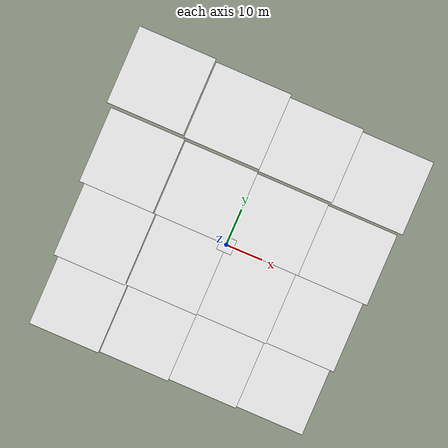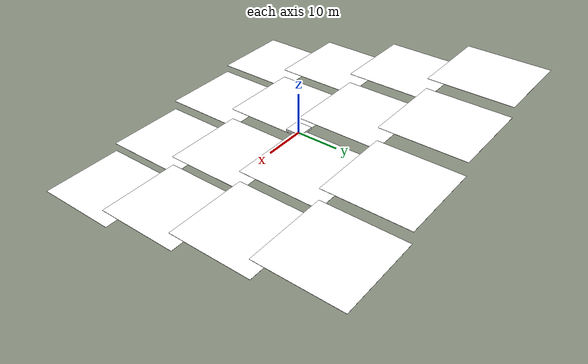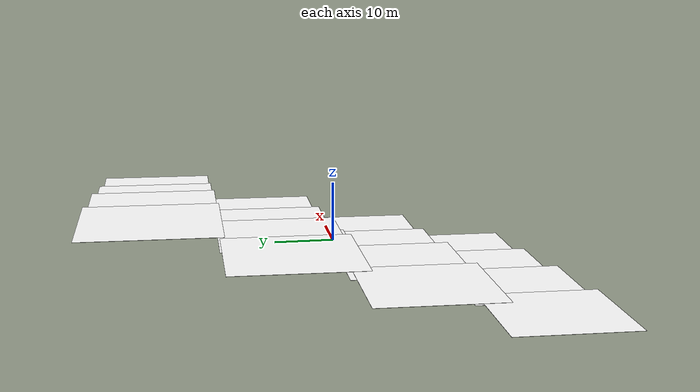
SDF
<sdf version="1.9">
 <world name="serefli_koschisar_flowtex">
  <plugin filename="gz-sim-physics-system" name="gz::sim::systems::Physics"/>
  <plugin filename="gz-sim-user-commands-system" name="gz::sim::systems::UserCommands"/>
  <plugin filename="gz-sim-scene-broadcaster-system" name="gz::sim::systems::SceneBroadcaster"/>
  <plugin filename="gz-sim-sensors-system" name="gz::sim::systems::Sensors">
   <render_engine>ogre</render_engine>
  </plugin>
  <plugin filename="gz-sim-imu-system" name="gz::sim::systems::Imu"/>
  <plugin filename="gz-sim-navsat-system" name="gz::sim::systems::NavSat"/>
  <plugin filename="gz-sim-air-pressure-system" name="gz::sim::systems::AirPressure"/>
  <plugin filename="gz-sim-magnetometer-system" name="gz::sim::systems::Magnetometer"/>
  <plugin filename="gz-sim-contact-system" name="gz::sim::systems::Contact"/>
  <plugin filename="gz-sim-apply-link-wrench-system" name="gz::sim::systems::ApplyLinkWrench"/>
  <light type="directional" name="sun">
   <pose>0 -7000 7000 0 0 0</pose>
   <diffuse>0.9 0.88 0.82 1</diffuse>
   <specular>0 0 0 1</specular>
   <direction>0.0 0.6 -0.6</direction>
  </light>
  <scene>
   <ambient>0.45 0.48 0.55 1</ambient>
   <grid>false</grid>
   <origin_visual>false</origin_visual>
   <sky><time>10</time><sunrise>6</sunrise><sunset>20</sunset><clouds><speed>12</speed></clouds></sky>
  </scene>
  <physics name="1ms" type="ignored"><dart><collision_detector>bullet</collision_detector></dart></physics>
  <gravity>0 0 -9.8066</gravity>
  <spherical_coordinates>
   <surface_model>EARTH_WGS84</surface_model>
   <latitude_deg>38.9667425790774</latitude_deg>
   <longitude_deg>33.564598215693906</longitude_deg>
   <elevation>1079.4000000000015</elevation>
  </spherical_coordinates>
  <model name="databoss_launch_pad">
   <static>true</static>
   <pose>0 0 1.05 0 0 0</pose>
   <link name="pad">
    <collision name="c"><geometry><box><size>4 4 0.5</size></box></geometry></collision>
    <visual name="v">
     <geometry><box><size>4 4 0.5</size></box></geometry>
     <material>
      <ambient>1 1 1 1</ambient>
      <diffuse>1 1 1 1</diffuse>
      <specular>0 0 0 1</specular>
      <pbr>
       <metal>
        <albedo_map>mesh/flow_detail.png</albedo_map>
        <roughness>1.0</roughness>
        <metalness>0.0</metalness>
       </metal>
      </pbr>
     </material>
    </visual>
   </link>
  </model>
  <model name="databoss_flow_detail_overlay">
   <static>true</static>
   <link name="visual_tiles">
    <visual name="flow_tile_000_000">
     <pose>-30.000000 -30.000000 -4.263682 0 0 0</pose>
     <geometry><box><size>20.000000 20.000000 0.030000</size></box></geometry>
     <material>
      <ambient>1 1 1 1</ambient>
      <diffuse>1 1 1 1</diffuse>
      <specular>0 0 0 1</specular>
      <pbr>
       <metal>
        <albedo_map>mesh/flow_detail.png</albedo_map>
        <roughness>1.0</roughness>
        <metalness>0.0</metalness>
       </metal>
      </pbr>
     </material>
    </visual>
    <visual name="flow_tile_000_001">
     <pose>-30.000000 -10.000000 0.908168 0 0 0</pose>
     <geometry><box><size>20.000000 20.000000 0.030000</size></box></geometry>
     <material>
      <ambient>1 1 1 1</ambient>
      <diffuse>1 1 1 1</diffuse>
      <specular>0 0 0 1</specular>
      <pbr>
       <metal>
        <albedo_map>mesh/flow_detail.png</albedo_map>
        <roughness>1.0</roughness>
        <metalness>0.0</metalness>
       </metal>
      </pbr>
     </material>
    </visual>
    <visual name="flow_tile_000_002">
     <pose>-30.000000 10.000000 6.304881 0 0 0</pose>
     <geometry><box><size>20.000000 20.000000 0.030000</size></box></geometry>
     <material>
      <ambient>1 1 1 1</ambient>
      <diffuse>1 1 1 1</diffuse>
      <specular>0 0 0 1</specular>
      <pbr>
       <metal>
        <albedo_map>mesh/flow_detail.png</albedo_map>
        <roughness>1.0</roughness>
        <metalness>0.0</metalness>
       </metal>
      </pbr>
     </material>
    </visual>
    <visual name="flow_tile_000_003">
     <pose>-30.000000 30.000000 11.778521 0 0 0</pose>
     <geometry><box><size>20.000000 20.000000 0.030000</size></box></geometry>
     <material>
      <ambient>1 1 1 1</ambient>
      <diffuse>1 1 1 1</diffuse>
      <specular>0 0 0 1</specular>
      <pbr>
       <metal>
        <albedo_map>mesh/flow_detail.png</albedo_map>
        <roughness>1.0</roughness>
        <metalness>0.0</metalness>
       </metal>
      </pbr>
     </material>
    </visual>
    <visual name="flow_tile_001_000">
     <pose>-10.000000 -30.000000 -6.143740 0 0 0</pose>
     <geometry><box><size>20.000000 20.000000 0.030000</size></box></geometry>
     <material>
      <ambient>1 1 1 1</ambient>
      <diffuse>1 1 1 1</diffuse>
      <specular>0 0 0 1</specular>
      <pbr>
       <metal>
        <albedo_map>mesh/flow_detail.png</albedo_map>
        <roughness>1.0</roughness>
        <metalness>0.0</metalness>
       </metal>
      </pbr>
     </material>
    </visual>
    <visual name="flow_tile_001_001">
     <pose>-10.000000 -10.000000 -1.129971 0 0 0</pose>
     <geometry><box><size>20.000000 20.000000 0.030000</size></box></geometry>
     <material>
      <ambient>1 1 1 1</ambient>
      <diffuse>1 1 1 1</diffuse>
      <specular>0 0 0 1</specular>
      <pbr>
       <metal>
        <albedo_map>mesh/flow_detail.png</albedo_map>
        <roughness>1.0</roughness>
        <metalness>0.0</metalness>
       </metal>
      </pbr>
     </material>
    </visual>
    <visual name="flow_tile_001_002">
     <pose>-10.000000 10.000000 4.004684 0 0 0</pose>
     <geometry><box><size>20.000000 20.000000 0.030000</size></box></geometry>
     <material>
      <ambient>1 1 1 1</ambient>
      <diffuse>1 1 1 1</diffuse>
      <specular>0 0 0 1</specular>
      <pbr>
       <metal>
        <albedo_map>mesh/flow_detail.png</albedo_map>
        <roughness>1.0</roughness>
        <metalness>0.0</metalness>
       </metal>
      </pbr>
     </material>
    </visual>
    <visual name="flow_tile_001_003">
     <pose>-10.000000 30.000000 9.322780 0 0 0</pose>
     <geometry><box><size>20.000000 20.000000 0.030000</size></box></geometry>
     <material>
      <ambient>1 1 1 1</ambient>
      <diffuse>1 1 1 1</diffuse>
      <specular>0 0 0 1</specular>
      <pbr>
       <metal>
        <albedo_map>mesh/flow_detail.png</albedo_map>
        <roughness>1.0</roughness>
        <metalness>0.0</metalness>
       </metal>
      </pbr>
     </material>
    </visual>
    <visual name="flow_tile_002_000">
     <pose>10.000000 -30.000000 -8.492122 0 0 0</pose>
     <geometry><box><size>20.000000 20.000000 0.030000</size></box></geometry>
     <material>
      <ambient>1 1 1 1</ambient>
      <diffuse>1 1 1 1</diffuse>
      <specular>0 0 0 1</specular>
      <pbr>
       <metal>
        <albedo_map>mesh/flow_detail.png</albedo_map>
        <roughness>1.0</roughness>
        <metalness>0.0</metalness>
       </metal>
      </pbr>
     </material>
    </visual>
    <visual name="flow_tile_002_001">
     <pose>10.000000 -10.000000 -3.808039 0 0 0</pose>
     <geometry><box><size>20.000000 20.000000 0.030000</size></box></geometry>
     <material>
      <ambient>1 1 1 1</ambient>
      <diffuse>1 1 1 1</diffuse>
      <specular>0 0 0 1</specular>
      <pbr>
       <metal>
        <albedo_map>mesh/flow_detail.png</albedo_map>
        <roughness>1.0</roughness>
        <metalness>0.0</metalness>
       </metal>
      </pbr>
     </material>
    </visual>
    <visual name="flow_tile_002_002">
     <pose>10.000000 10.000000 1.118660 0 0 0</pose>
     <geometry><box><size>20.000000 20.000000 0.030000</size></box></geometry>
     <material>
      <ambient>1 1 1 1</ambient>
      <diffuse>1 1 1 1</diffuse>
      <specular>0 0 0 1</specular>
      <pbr>
       <metal>
        <albedo_map>mesh/flow_detail.png</albedo_map>
        <roughness>1.0</roughness>
        <metalness>0.0</metalness>
       </metal>
      </pbr>
     </material>
    </visual>
    <visual name="flow_tile_002_003">
     <pose>10.000000 30.000000 6.180615 0 0 0</pose>
     <geometry><box><size>20.000000 20.000000 0.030000</size></box></geometry>
     <material>
      <ambient>1 1 1 1</ambient>
      <diffuse>1 1 1 1</diffuse>
      <specular>0 0 0 1</specular>
      <pbr>
       <metal>
        <albedo_map>mesh/flow_detail.png</albedo_map>
        <roughness>1.0</roughness>
        <metalness>0.0</metalness>
       </metal>
      </pbr>
     </material>
    </visual>
    <visual name="flow_tile_003_000">
     <pose>30.000000 -30.000000 -10.576755 0 0 0</pose>
     <geometry><box><size>20.000000 20.000000 0.030000</size></box></geometry>
     <material>
      <ambient>1 1 1 1</ambient>
      <diffuse>1 1 1 1</diffuse>
      <specular>0 0 0 1</specular>
      <pbr>
       <metal>
        <albedo_map>mesh/flow_detail.png</albedo_map>
        <roughness>1.0</roughness>
        <metalness>0.0</metalness>
       </metal>
      </pbr>
     </material>
    </visual>
    <visual name="flow_tile_003_001">
     <pose>30.000000 -10.000000 -6.002567 0 0 0</pose>
     <geometry><box><size>20.000000 20.000000 0.030000</size></box></geometry>
     <material>
      <ambient>1 1 1 1</ambient>
      <diffuse>1 1 1 1</diffuse>
      <specular>0 0 0 1</specular>
      <pbr>
       <metal>
        <albedo_map>mesh/flow_detail.png</albedo_map>
        <roughness>1.0</roughness>
        <metalness>0.0</metalness>
       </metal>
      </pbr>
     </material>
    </visual>
    <visual name="flow_tile_003_002">
     <pose>30.000000 10.000000 -1.418235 0 0 0</pose>
     <geometry><box><size>20.000000 20.000000 0.030000</size></box></geometry>
     <material>
      <ambient>1 1 1 1</ambient>
      <diffuse>1 1 1 1</diffuse>
      <specular>0 0 0 1</specular>
      <pbr>
       <metal>
        <albedo_map>mesh/flow_detail.png</albedo_map>
        <roughness>1.0</roughness>
        <metalness>0.0</metalness>
       </metal>
      </pbr>
     </material>
    </visual>
    <visual name="flow_tile_003_003">
     <pose>30.000000 30.000000 3.446753 0 0 0</pose>
     <geometry><box><size>20.000000 20.000000 0.030000</size></box></geometry>
     <material>
      <ambient>1 1 1 1</ambient>
      <diffuse>1 1 1 1</diffuse>
      <specular>0 0 0 1</specular>
      <pbr>
       <metal>
        <albedo_map>mesh/flow_detail.png</albedo_map>
        <roughness>1.0</roughness>
        <metalness>0.0</metalness>
       </metal>
      </pbr>
     </material>
    </visual>
   </link>
  </model>
 </world>
</sdf>
